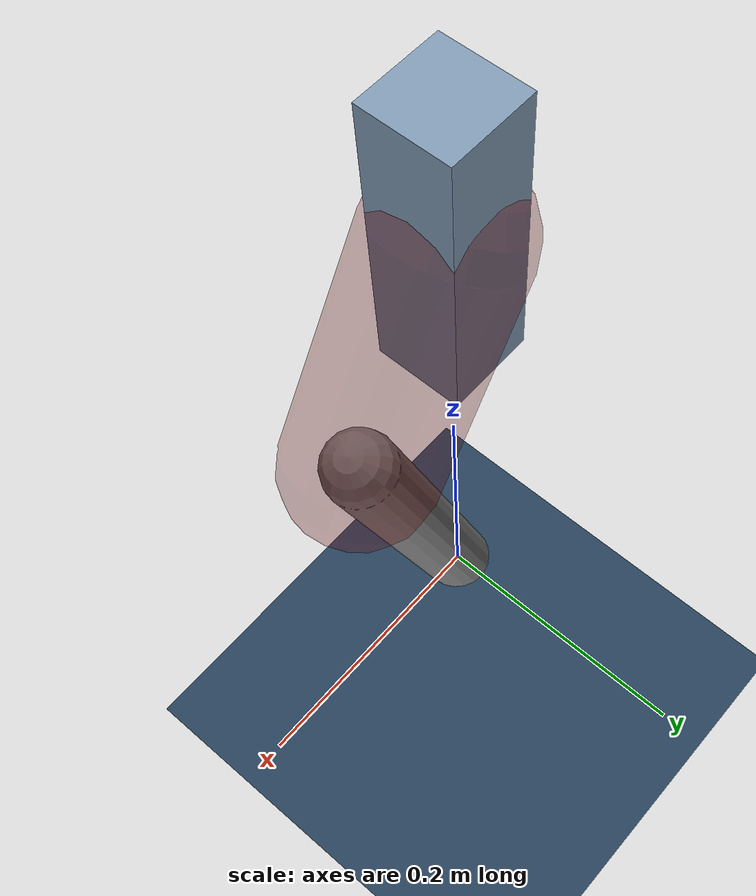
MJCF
<mujoco model="Hopper2D">
	<compiler inertiafromgeom="true" angle="radian" />
	<option timestep="0.001" integrator="implicit" cone="elliptic" solver="Newton" tolerance="1e-10" />

	<default>
		<geom contype="1" conaffinity="1" condim="3" friction="2 0.005 0.0001" solref="0.005 1" />
		<joint limited="true" damping="0.1" />
	</default>

	<asset>
		<texture name="skybox" type="skybox" builtin="gradient" rgb1=".4 .6 .8" rgb2="0 0 0" width="800" height="800" />
		<texture name="grid" type="2d" builtin="checker" rgb1=".1 .2 .3" rgb2=".2 .3 .4" width="300" height="300" mark="edge" markrgb=".2 .3 .4" />
		<material name="ground" texture="grid" texrepeat="1 1" texuniform="true" reflectance="0.1" />
		<material name="leg" rgba="0.5 0.6 0.7 1" />
	</asset>

	<worldbody>

		<geom name="floor" type="plane" size="5 5 0.25" material="ground" />

		<light directional="false" diffuse="0.8 0.8 0.8" specular="0.3 0.3 0.3" pos="0 0 2" dir="0 0 -1" />
		<light mode="targetbodycom" target="base" directional="false" diffuse="0.8 0.8 0.8" specular="0.3 0.3 0.3" pos="0 0 2" dir="0 0 -1" />

		<camera name="fixed" pos="0 -2 1" xyaxes="1 0 0 0 0 1" />
		<camera name="tracking" mode="trackcom" pos="0 -3 1" />

		<body name="root" pos="0 0 0.39298737734302963">
			<joint name="slide_x" type="slide" axis="1 0 0" range="-100 100" />
			<joint name="slide_z" type="slide" axis="0 0 1" range="0 10" />

			<body name="base" pos="0 0 0">
				<geom name="torso" type="box" size="0.03 0.03 0.1" mass="2.5170000000000003" material="leg" />

				<body name="link1" pos="0 0 0" euler="0 1.0118953094293168 0">
					<joint type="hinge" axis="0 -1 0" pos="0 0 0" name="hinge1" limited="true" range="-3.14 3.14" stiffness="0" damping="0.1" />
					<geom name="thigh" type="capsule" fromto="0 0 0 0.15836469522757413 0 0" size="0.05" rgba="0.5 0 0 0.3" mass="0.6283752685461779" />

					<body name="link2" pos="0.15836469522757413 0 0" euler="0 0.8727473595889884 0">
						<joint type="hinge" axis="0 -1 0" pos="0 0 0" name="hinge2" limited="true" range="-3.14 3.14" stiffness="0" damping="0.1" />
						<geom name="shank" type="capsule" fromto="0 0 0 0.27200636228017966 0 0" size="0.025" mass="0.4606050898241437" />

					</body>
				</body>
			</body>
		</body>
	</worldbody>

	<actuator>
		<motor name="torque1" joint="hinge1" ctrlrange="-55.271765806933544 55.271765806933544" ctrllimited="true" gear="1" />
		<motor name="torque2" joint="hinge2" ctrlrange="-66.65819662404465 66.65819662404465" ctrllimited="true" gear="1" />
	</actuator>
</mujoco>
